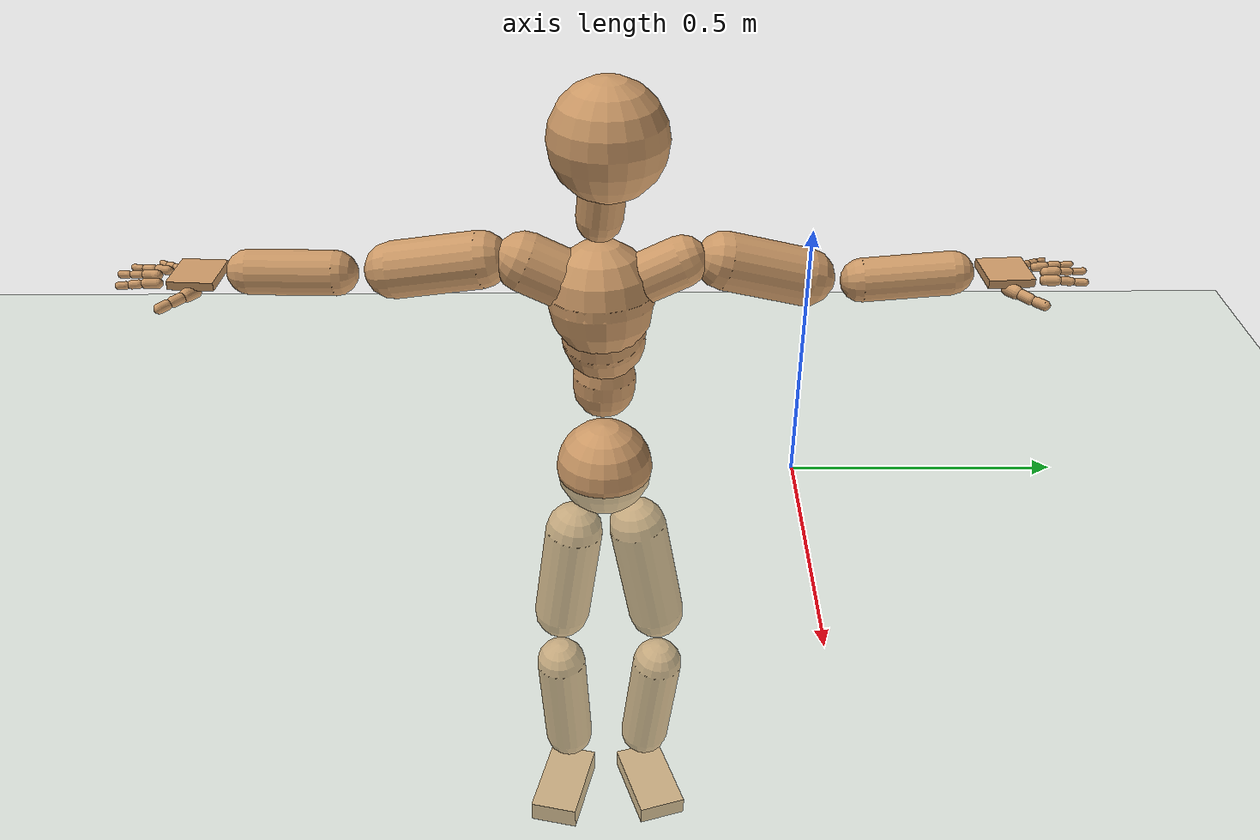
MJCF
<mujoco model="humanoid">
  <compiler coordinate="local" angle="radian"/>
  <default>
    <joint damping="0.0" armature="0.01" stiffness="0.0" limited="true"/>
    <geom conaffinity="1" condim="3" contype="7" margin="0.001" rgba="0.8 0.6 .4 1"/>
  </default>
  <asset>
    <texture type="skybox" builtin="gradient" rgb1=".4 .5 .6" rgb2="0 0 0" width="100" height="100"/>
    <texture builtin="flat" height="1278" mark="cross" markrgb="1 1 1" name="texgeom" random="0.01" rgb1="0.8 0.6 0.4" rgb2="0.8 0.6 0.4" type="cube" width="127"/>
    <texture builtin="checker" height="100" name="texplane" rgb1="0 0 0" rgb2="0.8 0.8 0.8" type="2d" width="100"/>
    <material name="MatPlane" reflectance="0.5" shininess="1" specular="1" texrepeat="60 60" texture="texplane"/>
    <material name="geom" texture="texgeom" texuniform="true"/>
  </asset>
  <worldbody>
    <light cutoff="100" diffuse="1 1 1" dir="-0 0 -1.3" directional="true" exponent="1" pos="0 0 1.3" specular=".1 .1 .1"/>
    <geom conaffinity="1" condim="3" name="floor" pos="0 0 0" rgba="0.8 0.9 0.8 1" size="100 100 .2" type="plane" material="MatPlane"/>
    <body name="Pelvis" pos="0.0007 -0.3643 0.008">
      <freejoint name="Pelvis"/>
      <geom type="sphere" contype="1" conaffinity="1" density="500" size="0.0931" pos="0.0000 0.0000 0.0000" name="Pelvis"/>
      <body name="L_Hip" pos="-0.0288 0.0516 -0.0908">
        <joint name="L_Hip_x" type="hinge" pos="0 0 0" axis="1 0 0" stiffness="800" damping="80" armature="0.02" range="-180.0000 180.0000"/>
        <joint name="L_Hip_y" type="hinge" pos="0 0 0" axis="0 1 0" stiffness="800" damping="80" armature="0.02" range="-180.0000 180.0000"/>
        <joint name="L_Hip_z" type="hinge" pos="0 0 0" axis="0 0 1" stiffness="800" damping="80" armature="0.02" range="-180.0000 180.0000"/>
        <geom type="capsule" contype="1" conaffinity="1" density="500" fromto="-0.0009 0.0137 -0.0785 -0.0036 0.0548 -0.3142" size="0.058" name="L_Hip"/>
        <body name="L_Knee" pos="-0.0044 0.0685 -0.3927">
          <joint name="L_Knee_x" type="hinge" pos="0 0 0" axis="1 0 0" stiffness="800" damping="80" armature="0.02" range="-180.0000 180.0000"/>
          <joint name="L_Knee_y" type="hinge" pos="0 0 0" axis="0 1 0" stiffness="800" damping="80" armature="0.02" range="-180.0000 180.0000"/>
          <joint name="L_Knee_z" type="hinge" pos="0 0 0" axis="0 0 1" stiffness="800" damping="80" armature="0.02" range="-180.0000 180.0000"/>
          <geom type="capsule" contype="1" conaffinity="1" density="500" fromto="-0.0079 -0.0088 -0.0819 -0.0317 -0.0353 -0.3278" size="0.0532" name="L_Knee"/>
          <body name="L_Ankle" pos="-0.0396 -0.0441 -0.4097">
            <joint name="L_Ankle_x" type="hinge" pos="0 0 0" axis="1 0 0" stiffness="800" damping="80" armature="0.02" range="-180.0000 180.0000"/>
            <joint name="L_Ankle_y" type="hinge" pos="0 0 0" axis="0 1 0" stiffness="800" damping="80" armature="0.02" range="-180.0000 180.0000"/>
            <joint name="L_Ankle_z" type="hinge" pos="0 0 0" axis="0 0 1" stiffness="800" damping="80" armature="0.02" range="-180.0000 180.0000"/>
            <geom type="box" contype="1" conaffinity="1" density="500" pos="0.0677 0.0212 -0.0294" size="0.0935 0.0519 0.0207" quat="0.9885 0.0000 0.0000 0.1510" name="L_Ankle"/>
            <body name="L_Toe" pos="0.1354 0.0423 -0.0588">
              <joint name="L_Toe_x" type="hinge" pos="0 0 0" axis="1 0 0" stiffness="500" damping="50" armature="0.02" range="-180.0000 180.0000"/>
              <joint name="L_Toe_y" type="hinge" pos="0 0 0" axis="0 1 0" stiffness="500" damping="50" armature="0.02" range="-180.0000 180.0000"/>
              <joint name="L_Toe_z" type="hinge" pos="0 0 0" axis="0 0 1" stiffness="500" damping="50" armature="0.02" range="-180.0000 180.0000"/>
              <geom type="box" contype="1" conaffinity="1" density="500" pos="0.0000 0.0000 0.0300" size="0.001 0.0025 0.0011" quat="0.9878 0.0000 0.0000 0.1554" name="L_Toe"/>
            </body>
          </body>
        </body>
      </body>
      <body name="R_Hip" pos="-0.0218 -0.0531 -0.1009">
        <joint name="R_Hip_x" type="hinge" pos="0 0 0" axis="1 0 0" stiffness="800" damping="80" armature="0.02" range="-180.0000 180.0000"/>
        <joint name="R_Hip_y" type="hinge" pos="0 0 0" axis="0 1 0" stiffness="800" damping="80" armature="0.02" range="-180.0000 180.0000"/>
        <joint name="R_Hip_z" type="hinge" pos="0 0 0" axis="0 0 1" stiffness="800" damping="80" armature="0.02" range="-180.0000 180.0000"/>
        <geom type="capsule" contype="1" conaffinity="1" density="500" fromto="-0.0024 -0.0105 -0.0752 -0.0095 -0.0419 -0.3010" size="0.0579" name="R_Hip"/>
        <body name="R_Knee" pos="-0.0118 -0.0523 -0.3762">
          <joint name="R_Knee_x" type="hinge" pos="0 0 0" axis="1 0 0" stiffness="800" damping="80" armature="0.02" range="-180.0000 180.0000"/>
          <joint name="R_Knee_y" type="hinge" pos="0 0 0" axis="0 1 0" stiffness="800" damping="80" armature="0.02" range="-180.0000 180.0000"/>
          <joint name="R_Knee_z" type="hinge" pos="0 0 0" axis="0 0 1" stiffness="800" damping="80" armature="0.02" range="-180.0000 180.0000"/>
          <geom type="capsule" contype="1" conaffinity="1" density="500" fromto="-0.0078 0.0034 -0.0846 -0.0311 0.0138 -0.3385" size="0.0529" name="R_Knee"/>
          <body name="R_Ankle" pos="-0.0388 0.0172 -0.4231">
            <joint name="R_Ankle_x" type="hinge" pos="0 0 0" axis="1 0 0" stiffness="800" damping="80" armature="0.02" range="-180.0000 180.0000"/>
            <joint name="R_Ankle_y" type="hinge" pos="0 0 0" axis="0 1 0" stiffness="800" damping="80" armature="0.02" range="-180.0000 180.0000"/>
            <joint name="R_Ankle_z" type="hinge" pos="0 0 0" axis="0 0 1" stiffness="800" damping="80" armature="0.02" range="-180.0000 180.0000"/>
            <geom type="box" contype="1" conaffinity="1" density="500" pos="0.0709 -0.0168 -0.0291" size="0.0935 0.0519 0.0251" quat="0.9932 0.0000 0.0000 -0.1162" name="R_Ankle"/>
            <body name="R_Toe" pos="0.1418 -0.0336 -0.0583">
              <joint name="R_Toe_x" type="hinge" pos="0 0 0" axis="1 0 0" stiffness="500" damping="50" armature="0.02" range="-180.0000 180.0000"/>
              <joint name="R_Toe_y" type="hinge" pos="0 0 0" axis="0 1 0" stiffness="500" damping="50" armature="0.02" range="-180.0000 180.0000"/>
              <joint name="R_Toe_z" type="hinge" pos="0 0 0" axis="0 0 1" stiffness="500" damping="50" armature="0.02" range="-180.0000 180.0000"/>
              <geom type="box" contype="1" conaffinity="1" density="500" pos="0.0000 0.0000 0.0254" size="0.001 0.0025 0.0011" quat="0.9941 0.0000 0.0000 -0.1081" name="R_Toe"/>
            </body>
          </body>
        </body>
      </body>
      <body name="Torso" pos="-0.0318 -0.0018 0.1046">
        <joint name="Torso_x" type="hinge" pos="0 0 0" axis="1 0 0" stiffness="1000" damping="100" armature="0.02" range="-180.0000 180.0000"/>
        <joint name="Torso_y" type="hinge" pos="0 0 0" axis="0 1 0" stiffness="1000" damping="100" armature="0.02" range="-180.0000 180.0000"/>
        <joint name="Torso_z" type="hinge" pos="0 0 0" axis="0 0 1" stiffness="1000" damping="100" armature="0.02" range="-180.0000 180.0000"/>
        <geom type="capsule" contype="1" conaffinity="1" density="500" fromto="0.0026 0.0035 0.0875 0.0017 0.0023 0.0583" size="0.0588" name="Torso"/>
        <body name="Spine" pos="0.0043 0.0058 0.1458">
          <joint name="Spine_x" type="hinge" pos="0 0 0" axis="1 0 0" stiffness="1000" damping="100" armature="0.02" range="-180.0000 180.0000"/>
          <joint name="Spine_y" type="hinge" pos="0 0 0" axis="0 1 0" stiffness="1000" damping="100" armature="0.02" range="-180.0000 180.0000"/>
          <joint name="Spine_z" type="hinge" pos="0 0 0" axis="0 0 1" stiffness="1000" damping="100" armature="0.02" range="-180.0000 180.0000"/>
          <geom type="capsule" contype="1" conaffinity="1" density="500" fromto="0.0106 -0.0031 0.0337 0.0071 -0.0021 0.0224" size="0.077" name="Spine"/>
          <body name="Chest" pos="0.0177 -0.0051 0.0561">
            <joint name="Chest_x" type="hinge" pos="0 0 0" axis="1 0 0" stiffness="1000" damping="100" armature="0.02" range="-180.0000 180.0000"/>
            <joint name="Chest_y" type="hinge" pos="0 0 0" axis="0 1 0" stiffness="1000" damping="100" armature="0.02" range="-180.0000 180.0000"/>
            <joint name="Chest_z" type="hinge" pos="0 0 0" axis="0 0 1" stiffness="1000" damping="100" armature="0.02" range="-180.0000 180.0000"/>
            <geom type="capsule" contype="1" conaffinity="1" density="500" fromto="-0.0061 -0.0015 0.0626 -0.0041 -0.0010 0.0417" size="0.0958" name="Chest"/>
            <body name="Neck" pos="-0.0204 -0.0071 0.1632">
              <joint name="Neck_x" type="hinge" pos="0 0 0" axis="1 0 0" stiffness="500" damping="50" armature="0.02" range="-180.0000 180.0000"/>
              <joint name="Neck_y" type="hinge" pos="0 0 0" axis="0 1 0" stiffness="500" damping="50" armature="0.02" range="-180.0000 180.0000"/>
              <joint name="Neck_z" type="hinge" pos="0 0 0" axis="0 0 1" stiffness="500" damping="50" armature="0.02" range="-180.0000 180.0000"/>
              <geom type="capsule" contype="1" conaffinity="1" density="500" fromto="0.0040 0.0042 0.0367 0.0160 0.0167 0.1466" size="0.0418" name="Neck"/>
              <body name="Head" pos="0.0201 0.0208 0.1833">
                <joint name="Head_x" type="hinge" pos="0 0 0" axis="1 0 0" stiffness="500" damping="50" armature="0.02" range="-180.0000 180.0000"/>
                <joint name="Head_y" type="hinge" pos="0 0 0" axis="0 1 0" stiffness="500" damping="50" armature="0.02" range="-180.0000 180.0000"/>
                <joint name="Head_z" type="hinge" pos="0 0 0" axis="0 0 1" stiffness="500" damping="50" armature="0.02" range="-180.0000 180.0000"/>
                <geom type="sphere" contype="1" conaffinity="1" density="500" size="0.1044" pos="0.0000 0.0000 0.0000" name="Head"/>
              </body>
            </body>
            <body name="L_Thorax" pos="-0.0033 0.0393 0.0749">
              <joint name="L_Thorax_x" type="hinge" pos="0 0 0" axis="1 0 0" stiffness="500" damping="50" armature="0.02" range="-180.0000 180.0000"/>
              <joint name="L_Thorax_y" type="hinge" pos="0 0 0" axis="0 1 0" stiffness="500" damping="50" armature="0.02" range="-180.0000 180.0000"/>
              <joint name="L_Thorax_z" type="hinge" pos="0 0 0" axis="0 0 1" stiffness="500" damping="50" armature="0.02" range="-180.0000 180.0000"/>
              <geom type="capsule" contype="1" conaffinity="1" density="500" fromto="-0.0022 0.0255 0.0111 -0.0087 0.1022 0.0445" size="0.0463" name="L_Thorax"/>
              <body name="L_Shoulder" pos="-0.0108 0.1277 0.0557">
                <joint name="L_Shoulder_x" type="hinge" pos="0 0 0" axis="1 0 0" stiffness="500" damping="50" armature="0.02" range="-180.0000 180.0000"/>
                <joint name="L_Shoulder_y" type="hinge" pos="0 0 0" axis="0 1 0" stiffness="500" damping="50" armature="0.02" range="-180.0000 180.0000"/>
                <joint name="L_Shoulder_z" type="hinge" pos="0 0 0" axis="0 0 1" stiffness="500" damping="50" armature="0.02" range="-180.0000 180.0000"/>
                <geom type="capsule" contype="1" conaffinity="1" density="500" fromto="-0.0083 0.0502 -0.0152 -0.0332 0.2009 -0.0608" size="0.0521" name="L_Shoulder"/>
                <body name="L_Elbow" pos="-0.0414 0.2511 -0.076">
                  <joint name="L_Elbow_x" type="hinge" pos="0 0 0" axis="1 0 0" stiffness="500" damping="50" armature="0.02" range="-720.0000 720.0000"/>
                  <joint name="L_Elbow_y" type="hinge" pos="0 0 0" axis="0 1 0" stiffness="500" damping="50" armature="0.02" range="-720.0000 720.0000"/>
                  <joint name="L_Elbow_z" type="hinge" pos="0 0 0" axis="0 0 1" stiffness="500" damping="50" armature="0.02" range="-720.0000 720.0000"/>
                  <geom type="capsule" contype="1" conaffinity="1" density="500" fromto="-0.0003 0.0536 0.0044 -0.0013 0.2143 0.0175" size="0.0399" name="L_Elbow"/>
                  <body name="L_Wrist" pos="-0.0016 0.2679 0.0219">
                    <joint name="L_Wrist_x" type="hinge" pos="0 0 0" axis="1 0 0" stiffness="300" damping="30" armature="0.02" range="-180.0000 180.0000"/>
                    <joint name="L_Wrist_y" type="hinge" pos="0 0 0" axis="0 1 0" stiffness="300" damping="30" armature="0.02" range="-180.0000 180.0000"/>
                    <joint name="L_Wrist_z" type="hinge" pos="0 0 0" axis="0 0 1" stiffness="300" damping="30" armature="0.02" range="-180.0000 180.0000"/>
                    <geom type="box" contype="1" conaffinity="1" density="500" pos="-0.0030 0.0445 -0.0059" size="0.0424 0.0444 0.0077" quat="0.7303 0.0000 0.0000 -0.6831" name="L_Wrist"/>
                    <body name="L_Index1" pos="0.021 0.1046 -0.009">
                      <joint name="L_Index1_x" type="hinge" pos="0 0 0" axis="1 0 0" stiffness="100" damping="10" armature="0.02" range="-180.0000 180.0000"/>
                      <joint name="L_Index1_y" type="hinge" pos="0 0 0" axis="0 1 0" stiffness="100" damping="10" armature="0.02" range="-180.0000 180.0000"/>
                      <joint name="L_Index1_z" type="hinge" pos="0 0 0" axis="0 0 1" stiffness="100" damping="10" armature="0.02" range="-180.0000 180.0000"/>
                      <geom type="capsule" contype="1" conaffinity="1" density="500" fromto="0.0008 0.0067 0.0003 0.0031 0.0269 0.0012" size="0.0094" name="L_Index1"/>
                      <body name="L_Index2" pos="0.0039 0.0336 0.0015">
                        <joint name="L_Index2_x" type="hinge" pos="0 0 0" axis="1 0 0" stiffness="100" damping="10" armature="0.02" range="-180.0000 180.0000"/>
                        <joint name="L_Index2_y" type="hinge" pos="0 0 0" axis="0 1 0" stiffness="100" damping="10" armature="0.02" range="-180.0000 180.0000"/>
                        <joint name="L_Index2_z" type="hinge" pos="0 0 0" axis="0 0 1" stiffness="100" damping="10" armature="0.02" range="-180.0000 180.0000"/>
                        <geom type="capsule" contype="1" conaffinity="1" density="500" fromto="0.0000 0.0048 -0.0005 0.0001 0.0190 -0.0022" size="0.0078" name="L_Index2"/>
                        <body name="L_Index3" pos="0.0001 0.0238 -0.0027">
                          <joint name="L_Index3_x" type="hinge" pos="0 0 0" axis="1 0 0" stiffness="100" damping="10" armature="0.02" range="-180.0000 180.0000"/>
                          <joint name="L_Index3_y" type="hinge" pos="0 0 0" axis="0 1 0" stiffness="100" damping="10" armature="0.02" range="-180.0000 180.0000"/>
                          <joint name="L_Index3_z" type="hinge" pos="0 0 0" axis="0 0 1" stiffness="100" damping="10" armature="0.02" range="-180.0000 180.0000"/>
                          <geom type="capsule" contype="1" conaffinity="1" density="500" fromto="0.0004 0.0052 -0.0001 0.0017 0.0206 -0.0006" size="0.0067" name="L_Index3"/>
                        </body>
                      </body>
                    </body>
                    <body name="L_Middle1" pos="-0.0036 0.1126 -0.0064">
                      <joint name="L_Middle1_x" type="hinge" pos="0 0 0" axis="1 0 0" stiffness="100" damping="10" armature="0.02" range="-180.0000 180.0000"/>
                      <joint name="L_Middle1_y" type="hinge" pos="0 0 0" axis="0 1 0" stiffness="100" damping="10" armature="0.02" range="-180.0000 180.0000"/>
                      <joint name="L_Middle1_z" type="hinge" pos="0 0 0" axis="0 0 1" stiffness="100" damping="10" armature="0.02" range="-180.0000 180.0000"/>
                      <geom type="capsule" contype="1" conaffinity="1" density="500" fromto="-0.0009 0.0064 0.0000 -0.0035 0.0256 0.0001" size="0.0096" name="L_Middle1"/>
                      <body name="L_Middle2" pos="-0.0043 0.032 0.0002">
                        <joint name="L_Middle2_x" type="hinge" pos="0 0 0" axis="1 0 0" stiffness="100" damping="10" armature="0.02" range="-180.0000 180.0000"/>
                        <joint name="L_Middle2_y" type="hinge" pos="0 0 0" axis="0 1 0" stiffness="100" damping="10" armature="0.02" range="-180.0000 180.0000"/>
                        <joint name="L_Middle2_z" type="hinge" pos="0 0 0" axis="0 0 1" stiffness="100" damping="10" armature="0.02" range="-180.0000 180.0000"/>
                        <geom type="capsule" contype="1" conaffinity="1" density="500" fromto="-0.0009 0.0049 -0.0005 -0.0034 0.0196 -0.0020" size="0.0071" name="L_Middle2"/>
                        <body name="L_Middle3" pos="-0.0043 0.0245 -0.0025">
                          <joint name="L_Middle3_x" type="hinge" pos="0 0 0" axis="1 0 0" stiffness="100" damping="10" armature="0.02" range="-180.0000 180.0000"/>
                          <joint name="L_Middle3_y" type="hinge" pos="0 0 0" axis="0 1 0" stiffness="100" damping="10" armature="0.02" range="-180.0000 180.0000"/>
                          <joint name="L_Middle3_z" type="hinge" pos="0 0 0" axis="0 0 1" stiffness="100" damping="10" armature="0.02" range="-180.0000 180.0000"/>
                          <geom type="capsule" contype="1" conaffinity="1" density="500" fromto="-0.0005 0.0053 -0.0001 -0.0018 0.0212 -0.0004" size="0.0064" name="L_Middle3"/>
                        </body>
                      </body>
                    </body>
                    <body name="L_Pinky1" pos="-0.046 0.0863 -0.0145">
                      <joint name="L_Pinky1_x" type="hinge" pos="0 0 0" axis="1 0 0" stiffness="100" damping="10" armature="0.02" range="-180.0000 180.0000"/>
                      <joint name="L_Pinky1_y" type="hinge" pos="0 0 0" axis="0 1 0" stiffness="100" damping="10" armature="0.02" range="-180.0000 180.0000"/>
                      <joint name="L_Pinky1_z" type="hinge" pos="0 0 0" axis="0 0 1" stiffness="100" damping="10" armature="0.02" range="-180.0000 180.0000"/>
                      <geom type="capsule" contype="1" conaffinity="1" density="500" fromto="-0.0024 0.0034 -0.0004 -0.0096 0.0134 -0.0015" size="0.0069" name="L_Pinky1"/>
                      <body name="L_Pinky2" pos="-0.012 0.0168 -0.0019">
                        <joint name="L_Pinky2_x" type="hinge" pos="0 0 0" axis="1 0 0" stiffness="100" damping="10" armature="0.02" range="-180.0000 180.0000"/>
                        <joint name="L_Pinky2_y" type="hinge" pos="0 0 0" axis="0 1 0" stiffness="100" damping="10" armature="0.02" range="-180.0000 180.0000"/>
                        <joint name="L_Pinky2_z" type="hinge" pos="0 0 0" axis="0 0 1" stiffness="100" damping="10" armature="0.02" range="-180.0000 180.0000"/>
                        <geom type="capsule" contype="1" conaffinity="1" density="500" fromto="-0.0023 0.0033 -0.0004 -0.0091 0.0133 -0.0016" size="0.0066" name="L_Pinky2"/>
                        <body name="L_Pinky3" pos="-0.0113 0.0166 -0.002">
                          <joint name="L_Pinky3_x" type="hinge" pos="0 0 0" axis="1 0 0" stiffness="100" damping="10" armature="0.02" range="-180.0000 180.0000"/>
                          <joint name="L_Pinky3_y" type="hinge" pos="0 0 0" axis="0 1 0" stiffness="100" damping="10" armature="0.02" range="-180.0000 180.0000"/>
                          <joint name="L_Pinky3_z" type="hinge" pos="0 0 0" axis="0 0 1" stiffness="100" damping="10" armature="0.02" range="-180.0000 180.0000"/>
                          <geom type="capsule" contype="1" conaffinity="1" density="500" fromto="-0.0019 0.0037 -0.0000 -0.0075 0.0149 -0.0000" size="0.0051" name="L_Pinky3"/>
                        </body>
                      </body>
                    </body>
                    <body name="L_Ring1" pos="-0.0283 0.1001 -0.009">
                      <joint name="L_Ring1_x" type="hinge" pos="0 0 0" axis="1 0 0" stiffness="100" damping="10" armature="0.02" range="-180.0000 180.0000"/>
                      <joint name="L_Ring1_y" type="hinge" pos="0 0 0" axis="0 1 0" stiffness="100" damping="10" armature="0.02" range="-180.0000 180.0000"/>
                      <joint name="L_Ring1_z" type="hinge" pos="0 0 0" axis="0 0 1" stiffness="100" damping="10" armature="0.02" range="-180.0000 180.0000"/>
                      <geom type="capsule" contype="1" conaffinity="1" density="500" fromto="-0.0010 0.0059 0.0001 -0.0040 0.0237 0.0006" size="0.0082" name="L_Ring1"/>
                      <body name="L_Ring2" pos="-0.005 0.0297 0.0007">
                        <joint name="L_Ring2_x" type="hinge" pos="0 0 0" axis="1 0 0" stiffness="100" damping="10" armature="0.02" range="-180.0000 180.0000"/>
                        <joint name="L_Ring2_y" type="hinge" pos="0 0 0" axis="0 1 0" stiffness="100" damping="10" armature="0.02" range="-180.0000 180.0000"/>
                        <joint name="L_Ring2_z" type="hinge" pos="0 0 0" axis="0 0 1" stiffness="100" damping="10" armature="0.02" range="-180.0000 180.0000"/>
                        <geom type="capsule" contype="1" conaffinity="1" density="500" fromto="-0.0014 0.0048 -0.0004 -0.0054 0.0193 -0.0017" size="0.0076" name="L_Ring2"/>
                        <body name="L_Ring3" pos="-0.0068 0.0241 -0.0022">
                          <joint name="L_Ring3_x" type="hinge" pos="0 0 0" axis="1 0 0" stiffness="100" damping="10" armature="0.02" range="-180.0000 180.0000"/>
                          <joint name="L_Ring3_y" type="hinge" pos="0 0 0" axis="0 1 0" stiffness="100" damping="10" armature="0.02" range="-180.0000 180.0000"/>
                          <joint name="L_Ring3_z" type="hinge" pos="0 0 0" axis="0 0 1" stiffness="100" damping="10" armature="0.02" range="-180.0000 180.0000"/>
                          <geom type="capsule" contype="1" conaffinity="1" density="500" fromto="-0.0010 0.0052 -0.0000 -0.0038 0.0209 -0.0001" size="0.006" name="L_Ring3"/>
                        </body>
                      </body>
                    </body>
                    <body name="L_Thumb1" pos="0.0271 0.041 -0.0198">
                      <joint name="L_Thumb1_x" type="hinge" pos="0 0 0" axis="1 0 0" stiffness="100" damping="10" armature="0.02" range="-180.0000 180.0000"/>
                      <joint name="L_Thumb1_y" type="hinge" pos="0 0 0" axis="0 1 0" stiffness="100" damping="10" armature="0.02" range="-180.0000 180.0000"/>
                      <joint name="L_Thumb1_z" type="hinge" pos="0 0 0" axis="0 0 1" stiffness="100" damping="10" armature="0.02" range="-180.0000 180.0000"/>
                      <geom type="capsule" contype="1" conaffinity="1" density="500" fromto="0.0054 0.0035 0.0003 0.0218 0.0139 0.0013" size="0.0125" name="L_Thumb1"/>
                      <body name="L_Thumb2" pos="0.0272 0.0173 0.0016">
                        <joint name="L_Thumb2_x" type="hinge" pos="0 0 0" axis="1 0 0" stiffness="100" damping="10" armature="0.02" range="-180.0000 180.0000"/>
                        <joint name="L_Thumb2_y" type="hinge" pos="0 0 0" axis="0 1 0" stiffness="100" damping="10" armature="0.02" range="-180.0000 180.0000"/>
                        <joint name="L_Thumb2_z" type="hinge" pos="0 0 0" axis="0 0 1" stiffness="100" damping="10" armature="0.02" range="-180.0000 180.0000"/>
                        <geom type="capsule" contype="1" conaffinity="1" density="500" fromto="0.0034 0.0043 -0.0009 0.0137 0.0170 -0.0036" size="0.01" name="L_Thumb2"/>
                        <body name="L_Thumb3" pos="0.0171 0.0213 -0.0045">
                          <joint name="L_Thumb3_x" type="hinge" pos="0 0 0" axis="1 0 0" stiffness="100" damping="10" armature="0.02" range="-180.0000 180.0000"/>
                          <joint name="L_Thumb3_y" type="hinge" pos="0 0 0" axis="0 1 0" stiffness="100" damping="10" armature="0.02" range="-180.0000 180.0000"/>
                          <joint name="L_Thumb3_z" type="hinge" pos="0 0 0" axis="0 0 1" stiffness="100" damping="10" armature="0.02" range="-180.0000 180.0000"/>
                          <geom type="capsule" contype="1" conaffinity="1" density="500" fromto="0.0038 0.0047 -0.0005 0.0153 0.0186 -0.0020" size="0.0091" name="L_Thumb3"/>
                        </body>
                      </body>
                    </body>
                  </body>
                </body>
              </body>
            </body>
            <body name="R_Thorax" pos="-0.0068 -0.0398 0.0749">
              <joint name="R_Thorax_x" type="hinge" pos="0 0 0" axis="1 0 0" stiffness="500" damping="50" armature="0.02" range="-180.0000 180.0000"/>
              <joint name="R_Thorax_y" type="hinge" pos="0 0 0" axis="0 1 0" stiffness="500" damping="50" armature="0.02" range="-180.0000 180.0000"/>
              <joint name="R_Thorax_z" type="hinge" pos="0 0 0" axis="0 0 1" stiffness="500" damping="50" armature="0.02" range="-180.0000 180.0000"/>
              <geom type="capsule" contype="1" conaffinity="1" density="500" fromto="-0.0012 -0.0238 0.0112 -0.0047 -0.0951 0.0446" size="0.0541" name="R_Thorax"/>
              <body name="R_Shoulder" pos="-0.0059 -0.1189 0.0558">
                <joint name="R_Shoulder_x" type="hinge" pos="0 0 0" axis="1 0 0" stiffness="500" damping="50" armature="0.02" range="-180.0000 180.0000"/>
                <joint name="R_Shoulder_y" type="hinge" pos="0 0 0" axis="0 1 0" stiffness="500" damping="50" armature="0.02" range="-180.0000 180.0000"/>
                <joint name="R_Shoulder_z" type="hinge" pos="0 0 0" axis="0 0 1" stiffness="500" damping="50" armature="0.02" range="-180.0000 180.0000"/>
                <geom type="capsule" contype="1" conaffinity="1" density="500" fromto="-0.0064 -0.0534 -0.0098 -0.0256 -0.2137 -0.0393" size="0.0513" name="R_Shoulder"/>
                <body name="R_Elbow" pos="-0.032 -0.2671 -0.0491">
                  <joint name="R_Elbow_x" type="hinge" pos="0 0 0" axis="1 0 0" stiffness="500" damping="50" armature="0.02" range="-720.0000 720.0000"/>
                  <joint name="R_Elbow_y" type="hinge" pos="0 0 0" axis="0 1 0" stiffness="500" damping="50" armature="0.02" range="-720.0000 720.0000"/>
                  <joint name="R_Elbow_z" type="hinge" pos="0 0 0" axis="0 0 1" stiffness="500" damping="50" armature="0.02" range="-720.0000 720.0000"/>
                  <geom type="capsule" contype="1" conaffinity="1" density="500" fromto="-0.0023 -0.0519 -0.0004 -0.0093 -0.2077 -0.0014" size="0.0409" name="R_Elbow"/>
                  <body name="R_Wrist" pos="-0.0116 -0.2597 -0.0018">
                    <joint name="R_Wrist_x" type="hinge" pos="0 0 0" axis="1 0 0" stiffness="300" damping="30" armature="0.02" range="-180.0000 180.0000"/>
                    <joint name="R_Wrist_y" type="hinge" pos="0 0 0" axis="0 1 0" stiffness="300" damping="30" armature="0.02" range="-180.0000 180.0000"/>
                    <joint name="R_Wrist_z" type="hinge" pos="0 0 0" axis="0 0 1" stiffness="300" damping="30" armature="0.02" range="-180.0000 180.0000"/>
                    <geom type="box" contype="1" conaffinity="1" density="500" pos="-0.0034 -0.0443 -0.0076" size="0.0424 0.0457 0.0078" quat="0.7339 0.0000 0.0000 0.6793" name="R_Wrist"/>
                    <body name="R_Index1" pos="0.0201 -0.1043 -0.0124">
                      <joint name="R_Index1_x" type="hinge" pos="0 0 0" axis="1 0 0" stiffness="100" damping="10" armature="0.02" range="-180.0000 180.0000"/>
                      <joint name="R_Index1_y" type="hinge" pos="0 0 0" axis="0 1 0" stiffness="100" damping="10" armature="0.02" range="-180.0000 180.0000"/>
                      <joint name="R_Index1_z" type="hinge" pos="0 0 0" axis="0 0 1" stiffness="100" damping="10" armature="0.02" range="-180.0000 180.0000"/>
                      <geom type="capsule" contype="1" conaffinity="1" density="500" fromto="0.0008 -0.0067 0.0003 0.0031 -0.0269 0.0012" size="0.0094" name="R_Index1"/>
                      <body name="R_Index2" pos="0.0039 -0.0336 0.0015">
                        <joint name="R_Index2_x" type="hinge" pos="0 0 0" axis="1 0 0" stiffness="100" damping="10" armature="0.02" range="-180.0000 180.0000"/>
                        <joint name="R_Index2_y" type="hinge" pos="0 0 0" axis="0 1 0" stiffness="100" damping="10" armature="0.02" range="-180.0000 180.0000"/>
                        <joint name="R_Index2_z" type="hinge" pos="0 0 0" axis="0 0 1" stiffness="100" damping="10" armature="0.02" range="-180.0000 180.0000"/>
                        <geom type="capsule" contype="1" conaffinity="1" density="500" fromto="0.0000 -0.0048 -0.0005 0.0001 -0.0190 -0.0022" size="0.0078" name="R_Index2"/>
                        <body name="R_Index3" pos="0.0001 -0.0238 -0.0027">
                          <joint name="R_Index3_x" type="hinge" pos="0 0 0" axis="1 0 0" stiffness="100" damping="10" armature="0.02" range="-180.0000 180.0000"/>
                          <joint name="R_Index3_y" type="hinge" pos="0 0 0" axis="0 1 0" stiffness="100" damping="10" armature="0.02" range="-180.0000 180.0000"/>
                          <joint name="R_Index3_z" type="hinge" pos="0 0 0" axis="0 0 1" stiffness="100" damping="10" armature="0.02" range="-180.0000 180.0000"/>
                          <geom type="capsule" contype="1" conaffinity="1" density="500" fromto="0.0004 -0.0044 -0.0001 0.0017 -0.0174 -0.0006" size="0.007" name="R_Index3"/>
                        </body>
                      </body>
                    </body>
                    <body name="R_Middle1" pos="-0.0044 -0.1122 -0.0098">
                      <joint name="R_Middle1_x" type="hinge" pos="0 0 0" axis="1 0 0" stiffness="100" damping="10" armature="0.02" range="-180.0000 180.0000"/>
                      <joint name="R_Middle1_y" type="hinge" pos="0 0 0" axis="0 1 0" stiffness="100" damping="10" armature="0.02" range="-180.0000 180.0000"/>
                      <joint name="R_Middle1_z" type="hinge" pos="0 0 0" axis="0 0 1" stiffness="100" damping="10" armature="0.02" range="-180.0000 180.0000"/>
                      <geom type="capsule" contype="1" conaffinity="1" density="500" fromto="-0.0009 -0.0064 0.0000 -0.0035 -0.0256 0.0001" size="0.0096" name="R_Middle1"/>
                      <body name="R_Middle2" pos="-0.0043 -0.032 0.0002">
                        <joint name="R_Middle2_x" type="hinge" pos="0 0 0" axis="1 0 0" stiffness="100" damping="10" armature="0.02" range="-180.0000 180.0000"/>
                        <joint name="R_Middle2_y" type="hinge" pos="0 0 0" axis="0 1 0" stiffness="100" damping="10" armature="0.02" range="-180.0000 180.0000"/>
                        <joint name="R_Middle2_z" type="hinge" pos="0 0 0" axis="0 0 1" stiffness="100" damping="10" armature="0.02" range="-180.0000 180.0000"/>
                        <geom type="capsule" contype="1" conaffinity="1" density="500" fromto="-0.0009 -0.0049 -0.0005 -0.0034 -0.0196 -0.0020" size="0.0071" name="R_Middle2"/>
                        <body name="R_Middle3" pos="-0.0043 -0.0245 -0.0025">
                          <joint name="R_Middle3_x" type="hinge" pos="0 0 0" axis="1 0 0" stiffness="100" damping="10" armature="0.02" range="-180.0000 180.0000"/>
                          <joint name="R_Middle3_y" type="hinge" pos="0 0 0" axis="0 1 0" stiffness="100" damping="10" armature="0.02" range="-180.0000 180.0000"/>
                          <joint name="R_Middle3_z" type="hinge" pos="0 0 0" axis="0 0 1" stiffness="100" damping="10" armature="0.02" range="-180.0000 180.0000"/>
                          <geom type="capsule" contype="1" conaffinity="1" density="500" fromto="-0.0005 -0.0045 -0.0001 -0.0018 -0.0180 -0.0004" size="0.0067" name="R_Middle3"/>
                        </body>
                      </body>
                    </body>
                    <body name="R_Pinky1" pos="-0.0469 -0.0859 -0.0179">
                      <joint name="R_Pinky1_x" type="hinge" pos="0 0 0" axis="1 0 0" stiffness="100" damping="10" armature="0.02" range="-180.0000 180.0000"/>
                      <joint name="R_Pinky1_y" type="hinge" pos="0 0 0" axis="0 1 0" stiffness="100" damping="10" armature="0.02" range="-180.0000 180.0000"/>
                      <joint name="R_Pinky1_z" type="hinge" pos="0 0 0" axis="0 0 1" stiffness="100" damping="10" armature="0.02" range="-180.0000 180.0000"/>
                      <geom type="capsule" contype="1" conaffinity="1" density="500" fromto="-0.0024 -0.0034 -0.0004 -0.0096 -0.0134 -0.0015" size="0.0069" name="R_Pinky1"/>
                      <body name="R_Pinky2" pos="-0.012 -0.0168 -0.0019">
                        <joint name="R_Pinky2_x" type="hinge" pos="0 0 0" axis="1 0 0" stiffness="100" damping="10" armature="0.02" range="-180.0000 180.0000"/>
                        <joint name="R_Pinky2_y" type="hinge" pos="0 0 0" axis="0 1 0" stiffness="100" damping="10" armature="0.02" range="-180.0000 180.0000"/>
                        <joint name="R_Pinky2_z" type="hinge" pos="0 0 0" axis="0 0 1" stiffness="100" damping="10" armature="0.02" range="-180.0000 180.0000"/>
                        <geom type="capsule" contype="1" conaffinity="1" density="500" fromto="-0.0023 -0.0033 -0.0004 -0.0091 -0.0133 -0.0016" size="0.0066" name="R_Pinky2"/>
                        <body name="R_Pinky3" pos="-0.0113 -0.0166 -0.002">
                          <joint name="R_Pinky3_x" type="hinge" pos="0 0 0" axis="1 0 0" stiffness="100" damping="10" armature="0.02" range="-180.0000 180.0000"/>
                          <joint name="R_Pinky3_y" type="hinge" pos="0 0 0" axis="0 1 0" stiffness="100" damping="10" armature="0.02" range="-180.0000 180.0000"/>
                          <joint name="R_Pinky3_z" type="hinge" pos="0 0 0" axis="0 0 1" stiffness="100" damping="10" armature="0.02" range="-180.0000 180.0000"/>
                          <geom type="capsule" contype="1" conaffinity="1" density="500" fromto="-0.0019 -0.0029 -0.0000 -0.0075 -0.0117 -0.0000" size="0.0053" name="R_Pinky3"/>
                        </body>
                      </body>
                    </body>
                    <body name="R_Ring1" pos="-0.0292 -0.0997 -0.0124">
                      <joint name="R_Ring1_x" type="hinge" pos="0 0 0" axis="1 0 0" stiffness="100" damping="10" armature="0.02" range="-180.0000 180.0000"/>
                      <joint name="R_Ring1_y" type="hinge" pos="0 0 0" axis="0 1 0" stiffness="100" damping="10" armature="0.02" range="-180.0000 180.0000"/>
                      <joint name="R_Ring1_z" type="hinge" pos="0 0 0" axis="0 0 1" stiffness="100" damping="10" armature="0.02" range="-180.0000 180.0000"/>
                      <geom type="capsule" contype="1" conaffinity="1" density="500" fromto="-0.0010 -0.0059 0.0001 -0.0040 -0.0237 0.0006" size="0.0082" name="R_Ring1"/>
                      <body name="R_Ring2" pos="-0.005 -0.0297 0.0007">
                        <joint name="R_Ring2_x" type="hinge" pos="0 0 0" axis="1 0 0" stiffness="100" damping="10" armature="0.02" range="-180.0000 180.0000"/>
                        <joint name="R_Ring2_y" type="hinge" pos="0 0 0" axis="0 1 0" stiffness="100" damping="10" armature="0.02" range="-180.0000 180.0000"/>
                        <joint name="R_Ring2_z" type="hinge" pos="0 0 0" axis="0 0 1" stiffness="100" damping="10" armature="0.02" range="-180.0000 180.0000"/>
                        <geom type="capsule" contype="1" conaffinity="1" density="500" fromto="-0.0014 -0.0048 -0.0004 -0.0054 -0.0193 -0.0017" size="0.0076" name="R_Ring2"/>
                        <body name="R_Ring3" pos="-0.0068 -0.0241 -0.0022">
                          <joint name="R_Ring3_x" type="hinge" pos="0 0 0" axis="1 0 0" stiffness="100" damping="10" armature="0.02" range="-180.0000 180.0000"/>
                          <joint name="R_Ring3_y" type="hinge" pos="0 0 0" axis="0 1 0" stiffness="100" damping="10" armature="0.02" range="-180.0000 180.0000"/>
                          <joint name="R_Ring3_z" type="hinge" pos="0 0 0" axis="0 0 1" stiffness="100" damping="10" armature="0.02" range="-180.0000 180.0000"/>
                          <geom type="capsule" contype="1" conaffinity="1" density="500" fromto="-0.0010 -0.0044 -0.0000 -0.0038 -0.0177 -0.0001" size="0.0063" name="R_Ring3"/>
                        </body>
                      </body>
                    </body>
                    <body name="R_Thumb1" pos="0.0262 -0.0406 -0.0232">
                      <joint name="R_Thumb1_x" type="hinge" pos="0 0 0" axis="1 0 0" stiffness="100" damping="10" armature="0.02" range="-180.0000 180.0000"/>
                      <joint name="R_Thumb1_y" type="hinge" pos="0 0 0" axis="0 1 0" stiffness="100" damping="10" armature="0.02" range="-180.0000 180.0000"/>
                      <joint name="R_Thumb1_z" type="hinge" pos="0 0 0" axis="0 0 1" stiffness="100" damping="10" armature="0.02" range="-180.0000 180.0000"/>
                      <geom type="capsule" contype="1" conaffinity="1" density="500" fromto="0.0054 -0.0035 0.0003 0.0218 -0.0139 0.0013" size="0.0125" name="R_Thumb1"/>
                      <body name="R_Thumb2" pos="0.0272 -0.0173 0.0016">
                        <joint name="R_Thumb2_x" type="hinge" pos="0 0 0" axis="1 0 0" stiffness="100" damping="10" armature="0.02" range="-180.0000 180.0000"/>
                        <joint name="R_Thumb2_y" type="hinge" pos="0 0 0" axis="0 1 0" stiffness="100" damping="10" armature="0.02" range="-180.0000 180.0000"/>
                        <joint name="R_Thumb2_z" type="hinge" pos="0 0 0" axis="0 0 1" stiffness="100" damping="10" armature="0.02" range="-180.0000 180.0000"/>
                        <geom type="capsule" contype="1" conaffinity="1" density="500" fromto="0.0034 -0.0043 -0.0009 0.0137 -0.0170 -0.0036" size="0.01" name="R_Thumb2"/>
                        <body name="R_Thumb3" pos="0.0171 -0.0213 -0.0045">
                          <joint name="R_Thumb3_x" type="hinge" pos="0 0 0" axis="1 0 0" stiffness="100" damping="10" armature="0.02" range="-180.0000 180.0000"/>
                          <joint name="R_Thumb3_y" type="hinge" pos="0 0 0" axis="0 1 0" stiffness="100" damping="10" armature="0.02" range="-180.0000 180.0000"/>
                          <joint name="R_Thumb3_z" type="hinge" pos="0 0 0" axis="0 0 1" stiffness="100" damping="10" armature="0.02" range="-180.0000 180.0000"/>
                          <geom type="capsule" contype="1" conaffinity="1" density="500" fromto="0.0038 -0.0039 -0.0005 0.0153 -0.0154 -0.0020" size="0.0093" name="R_Thumb3"/>
                        </body>
                      </body>
                    </body>
                  </body>
                </body>
              </body>
            </body>
          </body>
        </body>
      </body>
    </body>
  </worldbody>
  <actuator>
    <motor name="L_Hip_x" joint="L_Hip_x" gear="500"/>
    <motor name="L_Hip_y" joint="L_Hip_y" gear="500"/>
    <motor name="L_Hip_z" joint="L_Hip_z" gear="500"/>
    <motor name="L_Knee_x" joint="L_Knee_x" gear="500"/>
    <motor name="L_Knee_y" joint="L_Knee_y" gear="500"/>
    <motor name="L_Knee_z" joint="L_Knee_z" gear="500"/>
    <motor name="L_Ankle_x" joint="L_Ankle_x" gear="500"/>
    <motor name="L_Ankle_y" joint="L_Ankle_y" gear="500"/>
    <motor name="L_Ankle_z" joint="L_Ankle_z" gear="500"/>
    <motor name="L_Toe_x" joint="L_Toe_x" gear="500"/>
    <motor name="L_Toe_y" joint="L_Toe_y" gear="500"/>
    <motor name="L_Toe_z" joint="L_Toe_z" gear="500"/>
    <motor name="R_Hip_x" joint="R_Hip_x" gear="500"/>
    <motor name="R_Hip_y" joint="R_Hip_y" gear="500"/>
    <motor name="R_Hip_z" joint="R_Hip_z" gear="500"/>
    <motor name="R_Knee_x" joint="R_Knee_x" gear="500"/>
    <motor name="R_Knee_y" joint="R_Knee_y" gear="500"/>
    <motor name="R_Knee_z" joint="R_Knee_z" gear="500"/>
    <motor name="R_Ankle_x" joint="R_Ankle_x" gear="500"/>
    <motor name="R_Ankle_y" joint="R_Ankle_y" gear="500"/>
    <motor name="R_Ankle_z" joint="R_Ankle_z" gear="500"/>
    <motor name="R_Toe_x" joint="R_Toe_x" gear="500"/>
    <motor name="R_Toe_y" joint="R_Toe_y" gear="500"/>
    <motor name="R_Toe_z" joint="R_Toe_z" gear="500"/>
    <motor name="Torso_x" joint="Torso_x" gear="500"/>
    <motor name="Torso_y" joint="Torso_y" gear="500"/>
    <motor name="Torso_z" joint="Torso_z" gear="500"/>
    <motor name="Spine_x" joint="Spine_x" gear="500"/>
    <motor name="Spine_y" joint="Spine_y" gear="500"/>
    <motor name="Spine_z" joint="Spine_z" gear="500"/>
    <motor name="Chest_x" joint="Chest_x" gear="500"/>
    <motor name="Chest_y" joint="Chest_y" gear="500"/>
    <motor name="Chest_z" joint="Chest_z" gear="500"/>
    <motor name="Neck_x" joint="Neck_x" gear="500"/>
    <motor name="Neck_y" joint="Neck_y" gear="500"/>
    <motor name="Neck_z" joint="Neck_z" gear="500"/>
    <motor name="Head_x" joint="Head_x" gear="500"/>
    <motor name="Head_y" joint="Head_y" gear="500"/>
    <motor name="Head_z" joint="Head_z" gear="500"/>
    <motor name="L_Thorax_x" joint="L_Thorax_x" gear="500"/>
    <motor name="L_Thorax_y" joint="L_Thorax_y" gear="500"/>
    <motor name="L_Thorax_z" joint="L_Thorax_z" gear="500"/>
    <motor name="L_Shoulder_x" joint="L_Shoulder_x" gear="500"/>
    <motor name="L_Shoulder_y" joint="L_Shoulder_y" gear="500"/>
    <motor name="L_Shoulder_z" joint="L_Shoulder_z" gear="500"/>
    <motor name="L_Elbow_x" joint="L_Elbow_x" gear="500"/>
    <motor name="L_Elbow_y" joint="L_Elbow_y" gear="500"/>
    <motor name="L_Elbow_z" joint="L_Elbow_z" gear="500"/>
    <motor name="L_Wrist_x" joint="L_Wrist_x" gear="500"/>
    <motor name="L_Wrist_y" joint="L_Wrist_y" gear="500"/>
    <motor name="L_Wrist_z" joint="L_Wrist_z" gear="500"/>
    <motor name="L_Index1_x" joint="L_Index1_x" gear="500"/>
    <motor name="L_Index1_y" joint="L_Index1_y" gear="500"/>
    <motor name="L_Index1_z" joint="L_Index1_z" gear="500"/>
    <motor name="L_Index2_x" joint="L_Index2_x" gear="500"/>
    <motor name="L_Index2_y" joint="L_Index2_y" gear="500"/>
    <motor name="L_Index2_z" joint="L_Index2_z" gear="500"/>
    <motor name="L_Index3_x" joint="L_Index3_x" gear="500"/>
    <motor name="L_Index3_y" joint="L_Index3_y" gear="500"/>
    <motor name="L_Index3_z" joint="L_Index3_z" gear="500"/>
    <motor name="L_Middle1_x" joint="L_Middle1_x" gear="500"/>
    <motor name="L_Middle1_y" joint="L_Middle1_y" gear="500"/>
    <motor name="L_Middle1_z" joint="L_Middle1_z" gear="500"/>
    <motor name="L_Middle2_x" joint="L_Middle2_x" gear="500"/>
    <motor name="L_Middle2_y" joint="L_Middle2_y" gear="500"/>
    <motor name="L_Middle2_z" joint="L_Middle2_z" gear="500"/>
    <motor name="L_Middle3_x" joint="L_Middle3_x" gear="500"/>
    <motor name="L_Middle3_y" joint="L_Middle3_y" gear="500"/>
    <motor name="L_Middle3_z" joint="L_Middle3_z" gear="500"/>
    <motor name="L_Pinky1_x" joint="L_Pinky1_x" gear="500"/>
    <motor name="L_Pinky1_y" joint="L_Pinky1_y" gear="500"/>
    <motor name="L_Pinky1_z" joint="L_Pinky1_z" gear="500"/>
    <motor name="L_Pinky2_x" joint="L_Pinky2_x" gear="500"/>
    <motor name="L_Pinky2_y" joint="L_Pinky2_y" gear="500"/>
    <motor name="L_Pinky2_z" joint="L_Pinky2_z" gear="500"/>
    <motor name="L_Pinky3_x" joint="L_Pinky3_x" gear="500"/>
    <motor name="L_Pinky3_y" joint="L_Pinky3_y" gear="500"/>
    <motor name="L_Pinky3_z" joint="L_Pinky3_z" gear="500"/>
    <motor name="L_Ring1_x" joint="L_Ring1_x" gear="500"/>
    <motor name="L_Ring1_y" joint="L_Ring1_y" gear="500"/>
    <motor name="L_Ring1_z" joint="L_Ring1_z" gear="500"/>
    <motor name="L_Ring2_x" joint="L_Ring2_x" gear="500"/>
    <motor name="L_Ring2_y" joint="L_Ring2_y" gear="500"/>
    <motor name="L_Ring2_z" joint="L_Ring2_z" gear="500"/>
    <motor name="L_Ring3_x" joint="L_Ring3_x" gear="500"/>
    <motor name="L_Ring3_y" joint="L_Ring3_y" gear="500"/>
    <motor name="L_Ring3_z" joint="L_Ring3_z" gear="500"/>
    <motor name="L_Thumb1_x" joint="L_Thumb1_x" gear="500"/>
    <motor name="L_Thumb1_y" joint="L_Thumb1_y" gear="500"/>
    <motor name="L_Thumb1_z" joint="L_Thumb1_z" gear="500"/>
    <motor name="L_Thumb2_x" joint="L_Thumb2_x" gear="500"/>
    <motor name="L_Thumb2_y" joint="L_Thumb2_y" gear="500"/>
    <motor name="L_Thumb2_z" joint="L_Thumb2_z" gear="500"/>
    <motor name="L_Thumb3_x" joint="L_Thumb3_x" gear="500"/>
    <motor name="L_Thumb3_y" joint="L_Thumb3_y" gear="500"/>
    <motor name="L_Thumb3_z" joint="L_Thumb3_z" gear="500"/>
    <motor name="R_Thorax_x" joint="R_Thorax_x" gear="500"/>
    <motor name="R_Thorax_y" joint="R_Thorax_y" gear="500"/>
    <motor name="R_Thorax_z" joint="R_Thorax_z" gear="500"/>
    <motor name="R_Shoulder_x" joint="R_Shoulder_x" gear="500"/>
    <motor name="R_Shoulder_y" joint="R_Shoulder_y" gear="500"/>
    <motor name="R_Shoulder_z" joint="R_Shoulder_z" gear="500"/>
    <motor name="R_Elbow_x" joint="R_Elbow_x" gear="500"/>
    <motor name="R_Elbow_y" joint="R_Elbow_y" gear="500"/>
    <motor name="R_Elbow_z" joint="R_Elbow_z" gear="500"/>
    <motor name="R_Wrist_x" joint="R_Wrist_x" gear="500"/>
    <motor name="R_Wrist_y" joint="R_Wrist_y" gear="500"/>
    <motor name="R_Wrist_z" joint="R_Wrist_z" gear="500"/>
    <motor name="R_Index1_x" joint="R_Index1_x" gear="500"/>
    <motor name="R_Index1_y" joint="R_Index1_y" gear="500"/>
    <motor name="R_Index1_z" joint="R_Index1_z" gear="500"/>
    <motor name="R_Index2_x" joint="R_Index2_x" gear="500"/>
    <motor name="R_Index2_y" joint="R_Index2_y" gear="500"/>
    <motor name="R_Index2_z" joint="R_Index2_z" gear="500"/>
    <motor name="R_Index3_x" joint="R_Index3_x" gear="500"/>
    <motor name="R_Index3_y" joint="R_Index3_y" gear="500"/>
    <motor name="R_Index3_z" joint="R_Index3_z" gear="500"/>
    <motor name="R_Middle1_x" joint="R_Middle1_x" gear="500"/>
    <motor name="R_Middle1_y" joint="R_Middle1_y" gear="500"/>
    <motor name="R_Middle1_z" joint="R_Middle1_z" gear="500"/>
    <motor name="R_Middle2_x" joint="R_Middle2_x" gear="500"/>
    <motor name="R_Middle2_y" joint="R_Middle2_y" gear="500"/>
    <motor name="R_Middle2_z" joint="R_Middle2_z" gear="500"/>
    <motor name="R_Middle3_x" joint="R_Middle3_x" gear="500"/>
    <motor name="R_Middle3_y" joint="R_Middle3_y" gear="500"/>
    <motor name="R_Middle3_z" joint="R_Middle3_z" gear="500"/>
    <motor name="R_Pinky1_x" joint="R_Pinky1_x" gear="500"/>
    <motor name="R_Pinky1_y" joint="R_Pinky1_y" gear="500"/>
    <motor name="R_Pinky1_z" joint="R_Pinky1_z" gear="500"/>
    <motor name="R_Pinky2_x" joint="R_Pinky2_x" gear="500"/>
    <motor name="R_Pinky2_y" joint="R_Pinky2_y" gear="500"/>
    <motor name="R_Pinky2_z" joint="R_Pinky2_z" gear="500"/>
    <motor name="R_Pinky3_x" joint="R_Pinky3_x" gear="500"/>
    <motor name="R_Pinky3_y" joint="R_Pinky3_y" gear="500"/>
    <motor name="R_Pinky3_z" joint="R_Pinky3_z" gear="500"/>
    <motor name="R_Ring1_x" joint="R_Ring1_x" gear="500"/>
    <motor name="R_Ring1_y" joint="R_Ring1_y" gear="500"/>
    <motor name="R_Ring1_z" joint="R_Ring1_z" gear="500"/>
    <motor name="R_Ring2_x" joint="R_Ring2_x" gear="500"/>
    <motor name="R_Ring2_y" joint="R_Ring2_y" gear="500"/>
    <motor name="R_Ring2_z" joint="R_Ring2_z" gear="500"/>
    <motor name="R_Ring3_x" joint="R_Ring3_x" gear="500"/>
    <motor name="R_Ring3_y" joint="R_Ring3_y" gear="500"/>
    <motor name="R_Ring3_z" joint="R_Ring3_z" gear="500"/>
    <motor name="R_Thumb1_x" joint="R_Thumb1_x" gear="500"/>
    <motor name="R_Thumb1_y" joint="R_Thumb1_y" gear="500"/>
    <motor name="R_Thumb1_z" joint="R_Thumb1_z" gear="500"/>
    <motor name="R_Thumb2_x" joint="R_Thumb2_x" gear="500"/>
    <motor name="R_Thumb2_y" joint="R_Thumb2_y" gear="500"/>
    <motor name="R_Thumb2_z" joint="R_Thumb2_z" gear="500"/>
    <motor name="R_Thumb3_x" joint="R_Thumb3_x" gear="500"/>
    <motor name="R_Thumb3_y" joint="R_Thumb3_y" gear="500"/>
    <motor name="R_Thumb3_z" joint="R_Thumb3_z" gear="500"/>
  </actuator>
  <contact>
    <exclude body1="Torso" body2="Chest"/>
    <exclude body1="Head" body2="Chest"/>
    <exclude body1="R_Knee" body2="R_Toe"/>
    <exclude body1="R_Knee" body2="L_Ankle"/>
    <exclude body1="R_Knee" body2="L_Toe"/>
    <exclude body1="L_Knee" body2="L_Toe"/>
    <exclude body1="L_Knee" body2="R_Ankle"/>
    <exclude body1="L_Knee" body2="R_Toe"/>
    <exclude body1="L_Shoulder" body2="Chest"/>
    <exclude body1="R_Shoulder" body2="Chest"/>
  </contact>
  <sensor/>
  <size njmax="700" nconmax="700"/>
</mujoco>
